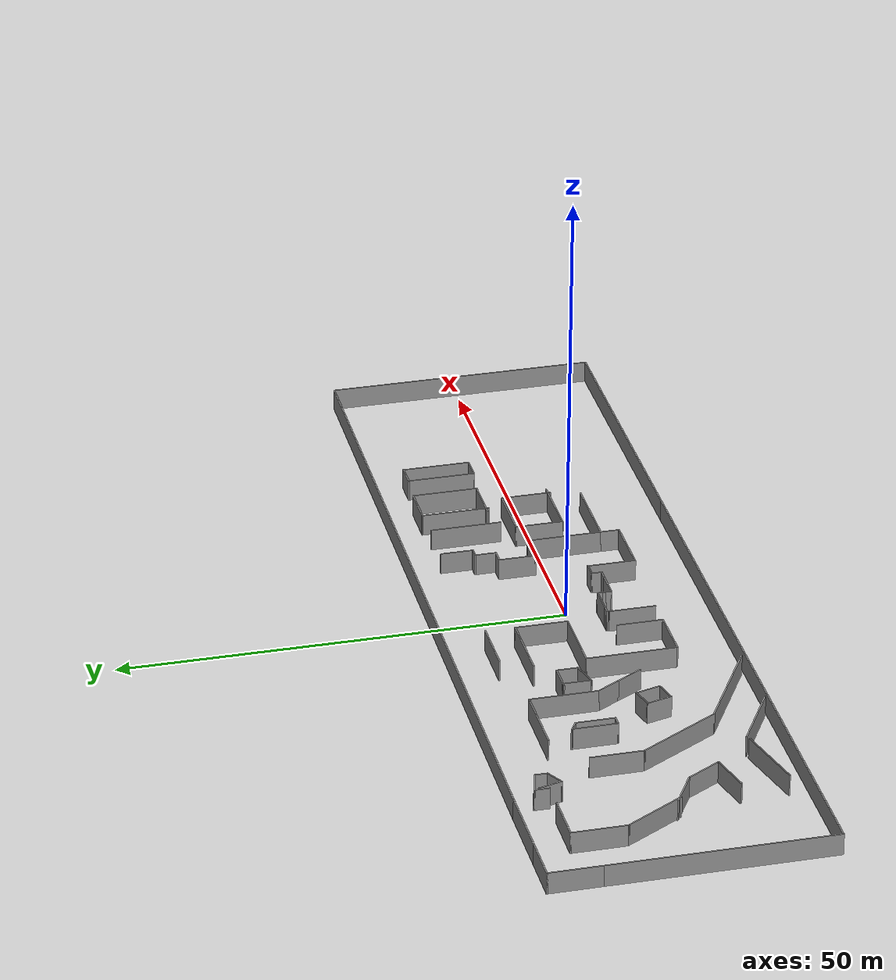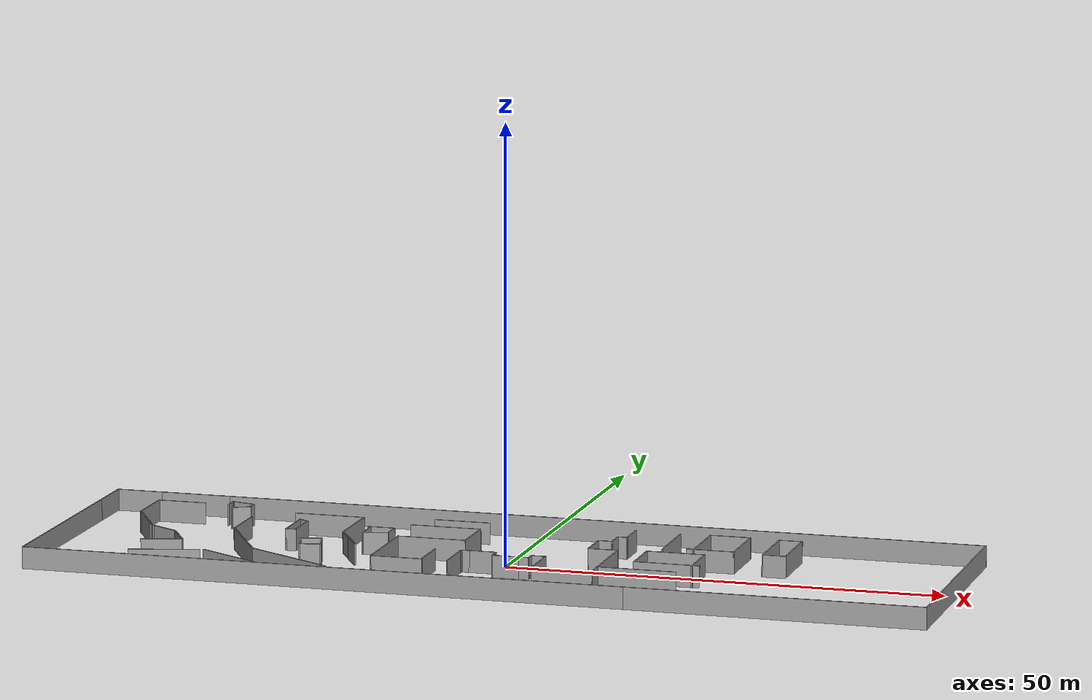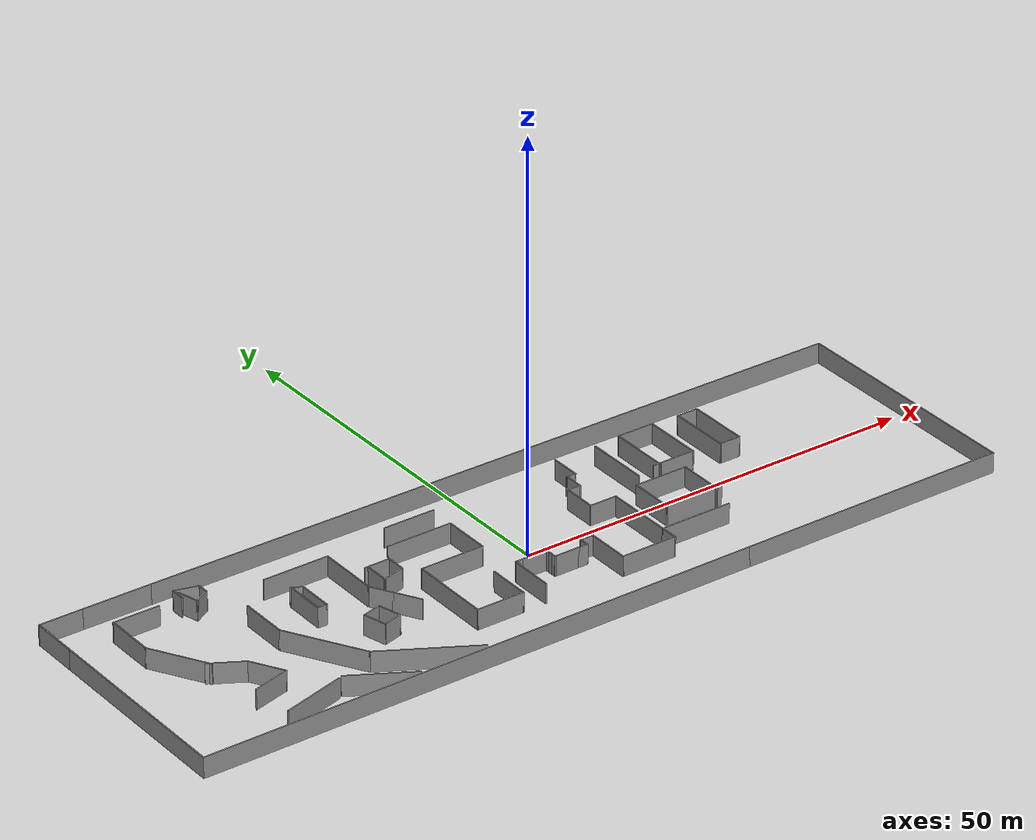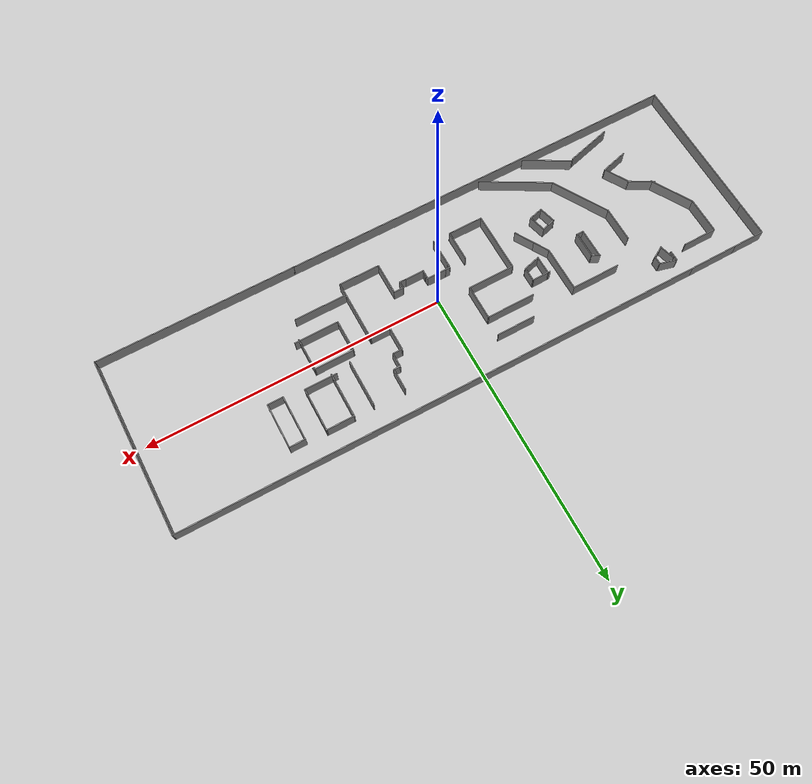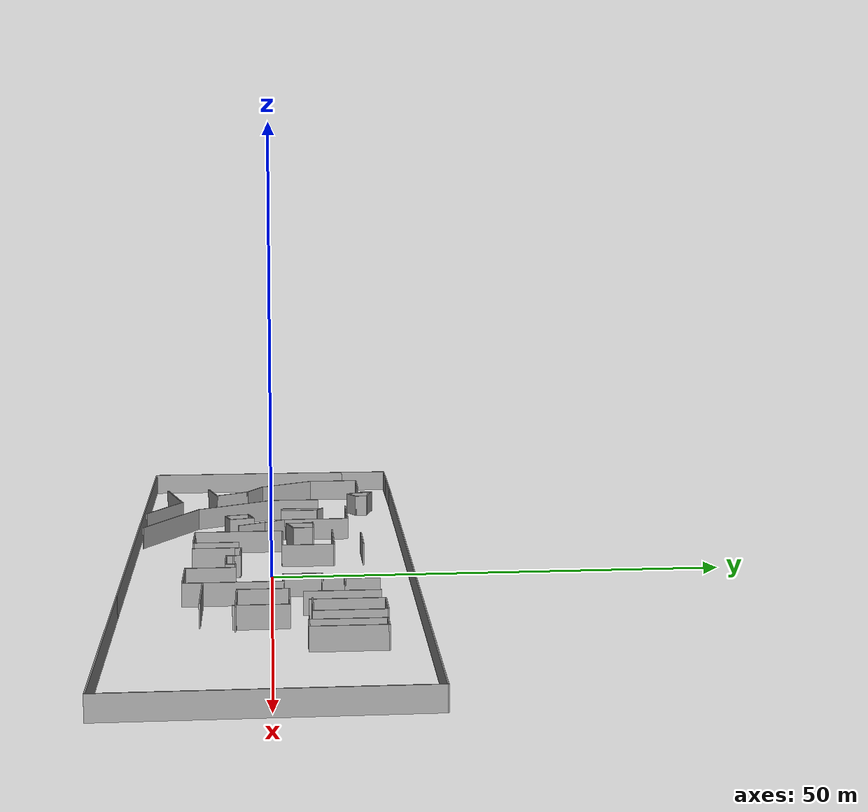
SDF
<?xml version='1.0'?>
<sdf version='1.7'>
  <model name='mimi1'>
    <pose>-0.041195 -0.106303 0 0 -0 0</pose>
    <link name='Wall_10'>
      <collision name='Wall_10_Collision'>
        <geometry>
          <box>
            <size>0.5 0.15 2.5</size>
          </box>
        </geometry>
        <pose>0 0 1.25 0 -0 0</pose>
      </collision>
      <visual name='Wall_10_Visual'>
        <pose>0 0 1.25 0 -0 0</pose>
        <geometry>
          <box>
            <size>0.5 0.15 2.5</size>
          </box>
        </geometry>
        <material>
          <script>
            <uri>file://media/materials/scripts/gazebo.material</uri>
            <name>Gazebo/Grey</name>
          </script>
          <ambient>1 1 1 1</ambient>
        </material>
        <meta>
          <layer>0</layer>
        </meta>
      </visual>
      <pose>-0.048805 -4.1387 0 0 -0 -1.5708</pose>
    </link>
    <link name='Wall_101'>
      <collision name='Wall_101_Collision'>
        <geometry>
          <box>
            <size>6.25 0.15 2.5</size>
          </box>
        </geometry>
        <pose>0 0 1.25 0 -0 0</pose>
      </collision>
      <visual name='Wall_101_Visual'>
        <pose>0 0 1.25 0 -0 0</pose>
        <geometry>
          <box>
            <size>6.25 0.15 2.5</size>
          </box>
        </geometry>
        <material>
          <script>
            <uri>file://media/materials/scripts/gazebo.material</uri>
            <name>Gazebo/Grey</name>
          </script>
          <ambient>1 1 1 1</ambient>
        </material>
        <meta>
          <layer>0</layer>
        </meta>
      </visual>
      <pose>-44.8675 8.29828 0 0 -0 -1.5708</pose>
    </link>
    <link name='Wall_102'>
      <collision name='Wall_102_Collision'>
        <geometry>
          <box>
            <size>7.75 0.15 2.5</size>
          </box>
        </geometry>
        <pose>0 0 1.25 0 -0 0</pose>
      </collision>
      <visual name='Wall_102_Visual'>
        <pose>0 0 1.25 0 -0 0</pose>
        <geometry>
          <box>
            <size>7.75 0.15 2.5</size>
          </box>
        </geometry>
        <material>
          <script>
            <uri>file://media/materials/scripts/gazebo.material</uri>
            <name>Gazebo/Grey</name>
          </script>
          <ambient>1 1 1 1</ambient>
        </material>
        <meta>
          <layer>0</layer>
        </meta>
      </visual>
      <pose>-42.9675 1.95738 0 0 -0 -1.0472</pose>
    </link>
    <link name='Wall_104'>
      <collision name='Wall_104_Collision'>
        <geometry>
          <box>
            <size>5.5 0.15 2.5</size>
          </box>
        </geometry>
        <pose>0 0 1.25 0 -0 0</pose>
      </collision>
      <visual name='Wall_104_Visual'>
        <pose>0 0 1.25 0 -0 0</pose>
        <geometry>
          <box>
            <size>5.5 0.15 2.5</size>
          </box>
        </geometry>
        <material>
          <script>
            <uri>file://media/materials/scripts/gazebo.material</uri>
            <name>Gazebo/Grey</name>
          </script>
          <ambient>1 1 1 1</ambient>
        </material>
        <meta>
          <layer>0</layer>
        </meta>
      </visual>
      <pose>-48.6753 15.4747 0 0 -0 3.14159</pose>
    </link>
    <link name='Wall_105'>
      <collision name='Wall_105_Collision'>
        <geometry>
          <box>
            <size>6 0.15 2.5</size>
          </box>
        </geometry>
        <pose>0 0 1.25 0 -0 0</pose>
      </collision>
      <visual name='Wall_105_Visual'>
        <pose>0 0 1.25 0 -0 0</pose>
        <geometry>
          <box>
            <size>6 0.15 2.5</size>
          </box>
        </geometry>
        <material>
          <script>
            <uri>file://media/materials/scripts/gazebo.material</uri>
            <name>Gazebo/Grey</name>
          </script>
          <ambient>1 1 1 1</ambient>
        </material>
        <meta>
          <layer>0</layer>
        </meta>
      </visual>
      <pose>-51.3503 12.5497 0 0 -0 -1.5708</pose>
    </link>
    <link name='Wall_106'>
      <collision name='Wall_106_Collision'>
        <geometry>
          <box>
            <size>25.25 0.15 2.5</size>
          </box>
        </geometry>
        <pose>0 0 1.25 0 -0 0</pose>
      </collision>
      <visual name='Wall_106_Visual'>
        <pose>0 0 1.25 0 -0 0</pose>
        <geometry>
          <box>
            <size>25.25 0.15 2.5</size>
          </box>
        </geometry>
        <material>
          <script>
            <uri>file://media/materials/scripts/gazebo.material</uri>
            <name>Gazebo/Grey</name>
          </script>
          <ambient>1 1 1 1</ambient>
        </material>
        <meta>
          <layer>0</layer>
        </meta>
      </visual>
      <pose>-51.3503 -2.92525 0 0 -0 -1.5708</pose>
    </link>
    <link name='Wall_107'>
      <collision name='Wall_107_Collision'>
        <geometry>
          <box>
            <size>69.25 0.15 2.5</size>
          </box>
        </geometry>
        <pose>0 0 1.25 0 -0 0</pose>
      </collision>
      <visual name='Wall_107_Visual'>
        <pose>0 0 1.25 0 -0 0</pose>
        <geometry>
          <box>
            <size>69.25 0.15 2.5</size>
          </box>
        </geometry>
        <material>
          <script>
            <uri>file://media/materials/scripts/gazebo.material</uri>
            <name>Gazebo/Grey</name>
          </script>
          <ambient>1 1 1 1</ambient>
        </material>
        <meta>
          <layer>0</layer>
        </meta>
      </visual>
      <pose>-16.8003 -15.4753 0 0 -0 0</pose>
    </link>
    <link name='Wall_108'>
      <collision name='Wall_108_Collision'>
        <geometry>
          <box>
            <size>33.75 0.15 2.5</size>
          </box>
        </geometry>
        <pose>0 0 1.25 0 -0 0</pose>
      </collision>
      <visual name='Wall_108_Visual'>
        <pose>0 0 1.25 0 -0 0</pose>
        <geometry>
          <box>
            <size>33.75 0.15 2.5</size>
          </box>
        </geometry>
        <material>
          <script>
            <uri>file://media/materials/scripts/gazebo.material</uri>
            <name>Gazebo/Grey</name>
          </script>
          <ambient>1 1 1 1</ambient>
        </material>
        <meta>
          <layer>0</layer>
        </meta>
      </visual>
      <pose>34.5497 -15.4753 0 0 -0 0</pose>
    </link>
    <link name='Wall_109'>
      <collision name='Wall_109_Collision'>
        <geometry>
          <box>
            <size>30.5 0.15 2.5</size>
          </box>
        </geometry>
        <pose>0 0 1.25 0 -0 0</pose>
      </collision>
      <visual name='Wall_109_Visual'>
        <pose>0 0 1.25 0 -0 0</pose>
        <geometry>
          <box>
            <size>30.5 0.15 2.5</size>
          </box>
        </geometry>
        <material>
          <script>
            <uri>file://media/materials/scripts/gazebo.material</uri>
            <name>Gazebo/Grey</name>
          </script>
          <ambient>1 1 1 1</ambient>
        </material>
        <meta>
          <layer>0</layer>
        </meta>
      </visual>
      <pose>51.3497 -0.300251 0 0 -0 1.5708</pose>
    </link>
    <link name='Wall_11'>
      <collision name='Wall_11_Collision'>
        <geometry>
          <box>
            <size>0.75 0.15 2.5</size>
          </box>
        </geometry>
        <pose>0 0 1.25 0 -0 0</pose>
      </collision>
      <visual name='Wall_11_Visual'>
        <pose>0 0 1.25 0 -0 0</pose>
        <geometry>
          <box>
            <size>0.75 0.15 2.5</size>
          </box>
        </geometry>
        <material>
          <script>
            <uri>file://media/materials/scripts/gazebo.material</uri>
            <name>Gazebo/Grey</name>
          </script>
          <ambient>1 1 1 1</ambient>
        </material>
        <meta>
          <layer>0</layer>
        </meta>
      </visual>
      <pose>-0.048805 -4.6137 0 0 -0 -1.5708</pose>
    </link>
    <link name='Wall_110'>
      <collision name='Wall_110_Collision'>
        <geometry>
          <box>
            <size>89.152 0.15 2.5</size>
          </box>
        </geometry>
        <pose>0 0 1.25 0 -0 0</pose>
      </collision>
      <visual name='Wall_110_Visual'>
        <pose>0 0 1.25 0 -0 0</pose>
        <geometry>
          <box>
            <size>89.152 0.15 2.5</size>
          </box>
        </geometry>
        <material>
          <script>
            <uri>file://media/materials/scripts/gazebo.material</uri>
            <name>Gazebo/Grey</name>
          </script>
          <ambient>1 1 1 1</ambient>
        </material>
        <meta>
          <layer>0</layer>
        </meta>
      </visual>
      <pose>6.84975 15.1747 0 0 -0 3.13485</pose>
    </link>
    <link name='Wall_12'>
      <collision name='Wall_12_Collision'>
        <geometry>
          <box>
            <size>3.25 0.15 2.5</size>
          </box>
        </geometry>
        <pose>0 0 1.25 0 -0 0</pose>
      </collision>
      <visual name='Wall_12_Visual'>
        <pose>0 0 1.25 0 -0 0</pose>
        <geometry>
          <box>
            <size>3.25 0.15 2.5</size>
          </box>
        </geometry>
        <material>
          <script>
            <uri>file://media/materials/scripts/gazebo.material</uri>
            <name>Gazebo/Grey</name>
          </script>
          <ambient>1 1 1 1</ambient>
        </material>
        <meta>
          <layer>0</layer>
        </meta>
      </visual>
      <pose>1.5012 -4.9137 0 0 -0 0</pose>
    </link>
    <link name='Wall_13'>
      <collision name='Wall_13_Collision'>
        <geometry>
          <box>
            <size>1.25 0.15 2.5</size>
          </box>
        </geometry>
        <pose>0 0 1.25 0 -0 0</pose>
      </collision>
      <visual name='Wall_13_Visual'>
        <pose>0 0 1.25 0 -0 0</pose>
        <geometry>
          <box>
            <size>1.25 0.15 2.5</size>
          </box>
        </geometry>
        <material>
          <script>
            <uri>file://media/materials/scripts/gazebo.material</uri>
            <name>Gazebo/Grey</name>
          </script>
          <ambient>1 1 1 1</ambient>
        </material>
        <meta>
          <layer>0</layer>
        </meta>
      </visual>
      <pose>3.6012 -4.9137 0 0 -0 0</pose>
    </link>
    <link name='Wall_14'>
      <collision name='Wall_14_Collision'>
        <geometry>
          <box>
            <size>1.25 0.15 2.5</size>
          </box>
        </geometry>
        <pose>0 0 1.25 0 -0 0</pose>
      </collision>
      <visual name='Wall_14_Visual'>
        <pose>0 0 1.25 0 -0 0</pose>
        <geometry>
          <box>
            <size>1.25 0.15 2.5</size>
          </box>
        </geometry>
        <material>
          <script>
            <uri>file://media/materials/scripts/gazebo.material</uri>
            <name>Gazebo/Grey</name>
          </script>
          <ambient>1 1 1 1</ambient>
        </material>
        <meta>
          <layer>0</layer>
        </meta>
      </visual>
      <pose>4.1512 -4.3637 0 0 -0 1.5708</pose>
    </link>
    <link name='Wall_15'>
      <collision name='Wall_15_Collision'>
        <geometry>
          <box>
            <size>1.75 0.15 2.5</size>
          </box>
        </geometry>
        <pose>0 0 1.25 0 -0 0</pose>
      </collision>
      <visual name='Wall_15_Visual'>
        <pose>0 0 1.25 0 -0 0</pose>
        <geometry>
          <box>
            <size>1.75 0.15 2.5</size>
          </box>
        </geometry>
        <material>
          <script>
            <uri>file://media/materials/scripts/gazebo.material</uri>
            <name>Gazebo/Grey</name>
          </script>
          <ambient>1 1 1 1</ambient>
        </material>
        <meta>
          <layer>0</layer>
        </meta>
      </visual>
      <pose>4.9512 -3.8137 0 0 -0 0</pose>
    </link>
    <link name='Wall_18'>
      <collision name='Wall_18_Collision'>
        <geometry>
          <box>
            <size>5.5 0.15 2.5</size>
          </box>
        </geometry>
        <pose>0 0 1.25 0 -0 0</pose>
      </collision>
      <visual name='Wall_18_Visual'>
        <pose>0 0 1.25 0 -0 0</pose>
        <geometry>
          <box>
            <size>5.5 0.15 2.5</size>
          </box>
        </geometry>
        <material>
          <script>
            <uri>file://media/materials/scripts/gazebo.material</uri>
            <name>Gazebo/Grey</name>
          </script>
          <ambient>1 1 1 1</ambient>
        </material>
        <meta>
          <layer>0</layer>
        </meta>
      </visual>
      <pose>5.7512 -6.4887 0 0 -0 -1.5708</pose>
    </link>
    <link name='Wall_19'>
      <collision name='Wall_19_Collision'>
        <geometry>
          <box>
            <size>7 0.15 2.5</size>
          </box>
        </geometry>
        <pose>0 0 1.25 0 -0 0</pose>
      </collision>
      <visual name='Wall_19_Visual'>
        <pose>0 0 1.25 0 -0 0</pose>
        <geometry>
          <box>
            <size>7 0.15 2.5</size>
          </box>
        </geometry>
        <material>
          <script>
            <uri>file://media/materials/scripts/gazebo.material</uri>
            <name>Gazebo/Grey</name>
          </script>
          <ambient>1 1 1 1</ambient>
        </material>
        <meta>
          <layer>0</layer>
        </meta>
      </visual>
      <pose>9.17619 -9.1637 0 0 -0 0</pose>
    </link>
    <link name='Wall_20'>
      <collision name='Wall_20_Collision'>
        <geometry>
          <box>
            <size>2.25 0.15 2.5</size>
          </box>
        </geometry>
        <pose>0 0 1.25 0 -0 0</pose>
      </collision>
      <visual name='Wall_20_Visual'>
        <pose>0 0 1.25 0 -0 0</pose>
        <geometry>
          <box>
            <size>2.25 0.15 2.5</size>
          </box>
        </geometry>
        <material>
          <script>
            <uri>file://media/materials/scripts/gazebo.material</uri>
            <name>Gazebo/Grey</name>
          </script>
          <ambient>1 1 1 1</ambient>
        </material>
        <meta>
          <layer>0</layer>
        </meta>
      </visual>
      <pose>12.6012 -8.1137 0 0 -0 1.5708</pose>
    </link>
    <link name='Wall_21'>
      <collision name='Wall_21_Collision'>
        <geometry>
          <box>
            <size>9 0.15 2.5</size>
          </box>
        </geometry>
        <pose>0 0 1.25 0 -0 0</pose>
      </collision>
      <visual name='Wall_21_Visual'>
        <pose>0 0 1.25 0 -0 0</pose>
        <geometry>
          <box>
            <size>9 0.15 2.5</size>
          </box>
        </geometry>
        <material>
          <script>
            <uri>file://media/materials/scripts/gazebo.material</uri>
            <name>Gazebo/Grey</name>
          </script>
          <ambient>1 1 1 1</ambient>
        </material>
        <meta>
          <layer>0</layer>
        </meta>
      </visual>
      <pose>17.0262 -7.0637 0 0 -0 0</pose>
    </link>
    <link name='Wall_23'>
      <collision name='Wall_23_Collision'>
        <geometry>
          <box>
            <size>8.5 0.15 2.5</size>
          </box>
        </geometry>
        <pose>0 0 1.25 0 -0 0</pose>
      </collision>
      <visual name='Wall_23_Visual'>
        <pose>0 0 1.25 0 -0 0</pose>
        <geometry>
          <box>
            <size>8.5 0.15 2.5</size>
          </box>
        </geometry>
        <material>
          <script>
            <uri>file://media/materials/scripts/gazebo.material</uri>
            <name>Gazebo/Grey</name>
          </script>
          <ambient>1 1 1 1</ambient>
        </material>
        <meta>
          <layer>0</layer>
        </meta>
      </visual>
      <pose>12.6012 -2.8887 0 0 -0 1.5708</pose>
    </link>
    <link name='Wall_24'>
      <collision name='Wall_24_Collision'>
        <geometry>
          <box>
            <size>3.5 0.15 2.5</size>
          </box>
        </geometry>
        <pose>0 0 1.25 0 -0 0</pose>
      </collision>
      <visual name='Wall_24_Visual'>
        <pose>0 0 1.25 0 -0 0</pose>
        <geometry>
          <box>
            <size>3.5 0.15 2.5</size>
          </box>
        </geometry>
        <material>
          <script>
            <uri>file://media/materials/scripts/gazebo.material</uri>
            <name>Gazebo/Grey</name>
          </script>
          <ambient>1 1 1 1</ambient>
        </material>
        <meta>
          <layer>0</layer>
        </meta>
      </visual>
      <pose>10.9262 1.2863 0 0 -0 3.14159</pose>
    </link>
    <link name='Wall_25'>
      <collision name='Wall_25_Collision'>
        <geometry>
          <box>
            <size>4.25 0.15 2.5</size>
          </box>
        </geometry>
        <pose>0 0 1.25 0 -0 0</pose>
      </collision>
      <visual name='Wall_25_Visual'>
        <pose>0 0 1.25 0 -0 0</pose>
        <geometry>
          <box>
            <size>4.25 0.15 2.5</size>
          </box>
        </geometry>
        <material>
          <script>
            <uri>file://media/materials/scripts/gazebo.material</uri>
            <name>Gazebo/Grey</name>
          </script>
          <ambient>1 1 1 1</ambient>
        </material>
        <meta>
          <layer>0</layer>
        </meta>
      </visual>
      <pose>9.25119 3.3363 0 0 -0 1.5708</pose>
    </link>
    <link name='Wall_26'>
      <collision name='Wall_26_Collision'>
        <geometry>
          <box>
            <size>1.75 0.15 2.5</size>
          </box>
        </geometry>
        <pose>0 0 1.25 0 -0 0</pose>
      </collision>
      <visual name='Wall_26_Visual'>
        <pose>0 0 1.25 0 -0 0</pose>
        <geometry>
          <box>
            <size>1.75 0.15 2.5</size>
          </box>
        </geometry>
        <material>
          <script>
            <uri>file://media/materials/scripts/gazebo.material</uri>
            <name>Gazebo/Grey</name>
          </script>
          <ambient>1 1 1 1</ambient>
        </material>
        <meta>
          <layer>0</layer>
        </meta>
      </visual>
      <pose>10.0512 5.3863 0 0 -0 0</pose>
    </link>
    <link name='Wall_27'>
      <collision name='Wall_27_Collision'>
        <geometry>
          <box>
            <size>2.5 0.15 2.5</size>
          </box>
        </geometry>
        <pose>0 0 1.25 0 -0 0</pose>
      </collision>
      <visual name='Wall_27_Visual'>
        <pose>0 0 1.25 0 -0 0</pose>
        <geometry>
          <box>
            <size>2.5 0.15 2.5</size>
          </box>
        </geometry>
        <material>
          <script>
            <uri>file://media/materials/scripts/gazebo.material</uri>
            <name>Gazebo/Grey</name>
          </script>
          <ambient>1 1 1 1</ambient>
        </material>
        <meta>
          <layer>0</layer>
        </meta>
      </visual>
      <pose>10.8512 6.5613 0 0 -0 1.5708</pose>
    </link>
    <link name='Wall_28'>
      <collision name='Wall_28_Collision'>
        <geometry>
          <box>
            <size>1.25 0.15 2.5</size>
          </box>
        </geometry>
        <pose>0 0 1.25 0 -0 0</pose>
      </collision>
      <visual name='Wall_28_Visual'>
        <pose>0 0 1.25 0 -0 0</pose>
        <geometry>
          <box>
            <size>1.25 0.15 2.5</size>
          </box>
        </geometry>
        <material>
          <script>
            <uri>file://media/materials/scripts/gazebo.material</uri>
            <name>Gazebo/Grey</name>
          </script>
          <ambient>1 1 1 1</ambient>
        </material>
        <meta>
          <layer>0</layer>
        </meta>
      </visual>
      <pose>11.4012 7.7363 0 0 -0 0</pose>
    </link>
    <link name='Wall_29'>
      <collision name='Wall_29_Collision'>
        <geometry>
          <box>
            <size>3.75 0.15 2.5</size>
          </box>
        </geometry>
        <pose>0 0 1.25 0 -0 0</pose>
      </collision>
      <visual name='Wall_29_Visual'>
        <pose>0 0 1.25 0 -0 0</pose>
        <geometry>
          <box>
            <size>3.75 0.15 2.5</size>
          </box>
        </geometry>
        <material>
          <script>
            <uri>file://media/materials/scripts/gazebo.material</uri>
            <name>Gazebo/Grey</name>
          </script>
          <ambient>1 1 1 1</ambient>
        </material>
        <meta>
          <layer>0</layer>
        </meta>
      </visual>
      <pose>11.9512 9.5363 0 0 -0 1.5708</pose>
    </link>
    <link name='Wall_31'>
      <collision name='Wall_31_Collision'>
        <geometry>
          <box>
            <size>5.25 0.15 2.5</size>
          </box>
        </geometry>
        <pose>0 0 1.25 0 -0 0</pose>
      </collision>
      <visual name='Wall_31_Visual'>
        <pose>0 0 1.25 0 -0 0</pose>
        <geometry>
          <box>
            <size>5.25 0.15 2.5</size>
          </box>
        </geometry>
        <material>
          <script>
            <uri>file://media/materials/scripts/gazebo.material</uri>
            <name>Gazebo/Grey</name>
          </script>
          <ambient>1 1 1 1</ambient>
        </material>
        <meta>
          <layer>0</layer>
        </meta>
      </visual>
      <pose>-4.08828 -6.21074 0 0 -0 -1.5708</pose>
    </link>
    <link name='Wall_33'>
      <collision name='Wall_33_Collision'>
        <geometry>
          <box>
            <size>5.25 0.15 2.5</size>
          </box>
        </geometry>
        <pose>0 0 1.25 0 -0 0</pose>
      </collision>
      <visual name='Wall_33_Visual'>
        <pose>0 0 1.25 0 -0 0</pose>
        <geometry>
          <box>
            <size>5.25 0.15 2.5</size>
          </box>
        </geometry>
        <material>
          <script>
            <uri>file://media/materials/scripts/gazebo.material</uri>
            <name>Gazebo/Grey</name>
          </script>
          <ambient>1 1 1 1</ambient>
        </material>
        <meta>
          <layer>0</layer>
        </meta>
      </visual>
      <pose>-7.04153 -6.25119 0 0 -0 -1.5708</pose>
    </link>
    <link name='Wall_34'>
      <collision name='Wall_34_Collision'>
        <geometry>
          <box>
            <size>6 0.15 2.5</size>
          </box>
        </geometry>
        <pose>0 0 1.25 0 -0 0</pose>
      </collision>
      <visual name='Wall_34_Visual'>
        <pose>0 0 1.25 0 -0 0</pose>
        <geometry>
          <box>
            <size>6 0.15 2.5</size>
          </box>
        </geometry>
        <material>
          <script>
            <uri>file://media/materials/scripts/gazebo.material</uri>
            <name>Gazebo/Grey</name>
          </script>
          <ambient>1 1 1 1</ambient>
        </material>
        <meta>
          <layer>0</layer>
        </meta>
      </visual>
      <pose>-9.96653 -8.80119 0 0 -0 3.14159</pose>
    </link>
    <link name='Wall_35'>
      <collision name='Wall_35_Collision'>
        <geometry>
          <box>
            <size>10.25 0.15 2.5</size>
          </box>
        </geometry>
        <pose>0 0 1.25 0 -0 0</pose>
      </collision>
      <visual name='Wall_35_Visual'>
        <pose>0 0 1.25 0 -0 0</pose>
        <geometry>
          <box>
            <size>10.25 0.15 2.5</size>
          </box>
        </geometry>
        <material>
          <script>
            <uri>file://media/materials/scripts/gazebo.material</uri>
            <name>Gazebo/Grey</name>
          </script>
          <ambient>1 1 1 1</ambient>
        </material>
        <meta>
          <layer>0</layer>
        </meta>
      </visual>
      <pose>-12.8915 -3.75119 0 0 -0 1.5708</pose>
    </link>
    <link name='Wall_36'>
      <collision name='Wall_36_Collision'>
        <geometry>
          <box>
            <size>8 0.15 2.5</size>
          </box>
        </geometry>
        <pose>0 0 1.25 0 -0 0</pose>
      </collision>
      <visual name='Wall_36_Visual'>
        <pose>0 0 1.25 0 -0 0</pose>
        <geometry>
          <box>
            <size>8 0.15 2.5</size>
          </box>
        </geometry>
        <material>
          <script>
            <uri>file://media/materials/scripts/gazebo.material</uri>
            <name>Gazebo/Grey</name>
          </script>
          <ambient>1 1 1 1</ambient>
        </material>
        <meta>
          <layer>0</layer>
        </meta>
      </visual>
      <pose>-8.96653 1.2988 0 0 -0 0</pose>
    </link>
    <link name='Wall_37'>
      <collision name='Wall_37_Collision'>
        <geometry>
          <box>
            <size>6 0.15 2.5</size>
          </box>
        </geometry>
        <pose>0 0 1.25 0 -0 0</pose>
      </collision>
      <visual name='Wall_37_Visual'>
        <pose>0 0 1.25 0 -0 0</pose>
        <geometry>
          <box>
            <size>6 0.15 2.5</size>
          </box>
        </geometry>
        <material>
          <script>
            <uri>file://media/materials/scripts/gazebo.material</uri>
            <name>Gazebo/Grey</name>
          </script>
          <ambient>1 1 1 1</ambient>
        </material>
        <meta>
          <layer>0</layer>
        </meta>
      </visual>
      <pose>-5.04153 4.2238 0 0 -0 1.5708</pose>
    </link>
    <link name='Wall_38'>
      <collision name='Wall_38_Collision'>
        <geometry>
          <box>
            <size>8.25 0.15 2.5</size>
          </box>
        </geometry>
        <pose>0 0 1.25 0 -0 0</pose>
      </collision>
      <visual name='Wall_38_Visual'>
        <pose>0 0 1.25 0 -0 0</pose>
        <geometry>
          <box>
            <size>8.25 0.15 2.5</size>
          </box>
        </geometry>
        <material>
          <script>
            <uri>file://media/materials/scripts/gazebo.material</uri>
            <name>Gazebo/Grey</name>
          </script>
          <ambient>1 1 1 1</ambient>
        </material>
        <meta>
          <layer>0</layer>
        </meta>
      </visual>
      <pose>-9.09153 7.14881 0 0 -0 3.14159</pose>
    </link>
    <link name='Wall_40'>
      <collision name='Wall_40_Collision'>
        <geometry>
          <box>
            <size>7.5 0.15 2.5</size>
          </box>
        </geometry>
        <pose>0 0 1.25 0 -0 0</pose>
      </collision>
      <visual name='Wall_40_Visual'>
        <pose>0 0 1.25 0 -0 0</pose>
        <geometry>
          <box>
            <size>7.5 0.15 2.5</size>
          </box>
        </geometry>
        <material>
          <script>
            <uri>file://media/materials/scripts/gazebo.material</uri>
            <name>Gazebo/Grey</name>
          </script>
          <ambient>1 1 1 1</ambient>
        </material>
        <meta>
          <layer>0</layer>
        </meta>
      </visual>
      <pose>19.5038 -3.49892 0 0 -0 3.14159</pose>
    </link>
    <link name='Wall_41'>
      <collision name='Wall_41_Collision'>
        <geometry>
          <box>
            <size>5.5 0.15 2.5</size>
          </box>
        </geometry>
        <pose>0 0 1.25 0 -0 0</pose>
      </collision>
      <visual name='Wall_41_Visual'>
        <pose>0 0 1.25 0 -0 0</pose>
        <geometry>
          <box>
            <size>5.5 0.15 2.5</size>
          </box>
        </geometry>
        <material>
          <script>
            <uri>file://media/materials/scripts/gazebo.material</uri>
            <name>Gazebo/Grey</name>
          </script>
          <ambient>1 1 1 1</ambient>
        </material>
        <meta>
          <layer>0</layer>
        </meta>
      </visual>
      <pose>15.8288 -0.823917 0 0 -0 1.5708</pose>
    </link>
    <link name='Wall_42'>
      <collision name='Wall_42_Collision'>
        <geometry>
          <box>
            <size>6.75 0.15 2.5</size>
          </box>
        </geometry>
        <pose>0 0 1.25 0 -0 0</pose>
      </collision>
      <visual name='Wall_42_Visual'>
        <pose>0 0 1.25 0 -0 0</pose>
        <geometry>
          <box>
            <size>6.75 0.15 2.5</size>
          </box>
        </geometry>
        <material>
          <script>
            <uri>file://media/materials/scripts/gazebo.material</uri>
            <name>Gazebo/Grey</name>
          </script>
          <ambient>1 1 1 1</ambient>
        </material>
        <meta>
          <layer>0</layer>
        </meta>
      </visual>
      <pose>19.1288 1.85108 0 0 -0 0</pose>
    </link>
    <link name='Wall_43'>
      <collision name='Wall_43_Collision'>
        <geometry>
          <box>
            <size>5.75 0.15 2.5</size>
          </box>
        </geometry>
        <pose>0 0 1.25 0 -0 0</pose>
      </collision>
      <visual name='Wall_43_Visual'>
        <pose>0 0 1.25 0 -0 0</pose>
        <geometry>
          <box>
            <size>5.75 0.15 2.5</size>
          </box>
        </geometry>
        <material>
          <script>
            <uri>file://media/materials/scripts/gazebo.material</uri>
            <name>Gazebo/Grey</name>
          </script>
          <ambient>1 1 1 1</ambient>
        </material>
        <meta>
          <layer>0</layer>
        </meta>
      </visual>
      <pose>22.4288 -0.948917 0 0 -0 -1.5708</pose>
    </link>
    <link name='Wall_45'>
      <collision name='Wall_45_Collision'>
        <geometry>
          <box>
            <size>8 0.15 2.5</size>
          </box>
        </geometry>
        <pose>0 0 1.25 0 -0 0</pose>
      </collision>
      <visual name='Wall_45_Visual'>
        <pose>0 0 1.25 0 -0 0</pose>
        <geometry>
          <box>
            <size>8 0.15 2.5</size>
          </box>
        </geometry>
        <material>
          <script>
            <uri>file://media/materials/scripts/gazebo.material</uri>
            <name>Gazebo/Grey</name>
          </script>
          <ambient>1 1 1 1</ambient>
        </material>
        <meta>
          <layer>0</layer>
        </meta>
      </visual>
      <pose>17.2318 7.26146 0 0 -0 -1.5708</pose>
    </link>
    <link name='Wall_47'>
      <collision name='Wall_47_Collision'>
        <geometry>
          <box>
            <size>5.5 0.15 2.5</size>
          </box>
        </geometry>
        <pose>0 0 1.25 0 -0 0</pose>
      </collision>
      <visual name='Wall_47_Visual'>
        <pose>0 0 1.25 0 -0 0</pose>
        <geometry>
          <box>
            <size>5.5 0.15 2.5</size>
          </box>
        </geometry>
        <material>
          <script>
            <uri>file://media/materials/scripts/gazebo.material</uri>
            <name>Gazebo/Grey</name>
          </script>
          <ambient>1 1 1 1</ambient>
        </material>
        <meta>
          <layer>0</layer>
        </meta>
      </visual>
      <pose>22.5364 4.10673 0 0 -0 0</pose>
    </link>
    <link name='Wall_48'>
      <collision name='Wall_48_Collision'>
        <geometry>
          <box>
            <size>7.5 0.15 2.5</size>
          </box>
        </geometry>
        <pose>0 0 1.25 0 -0 0</pose>
      </collision>
      <visual name='Wall_48_Visual'>
        <pose>0 0 1.25 0 -0 0</pose>
        <geometry>
          <box>
            <size>7.5 0.15 2.5</size>
          </box>
        </geometry>
        <material>
          <script>
            <uri>file://media/materials/scripts/gazebo.material</uri>
            <name>Gazebo/Grey</name>
          </script>
          <ambient>1 1 1 1</ambient>
        </material>
        <meta>
          <layer>0</layer>
        </meta>
      </visual>
      <pose>25.2114 7.78173 0 0 -0 1.5708</pose>
    </link>
    <link name='Wall_49'>
      <collision name='Wall_49_Collision'>
        <geometry>
          <box>
            <size>4.75 0.15 2.5</size>
          </box>
        </geometry>
        <pose>0 0 1.25 0 -0 0</pose>
      </collision>
      <visual name='Wall_49_Visual'>
        <pose>0 0 1.25 0 -0 0</pose>
        <geometry>
          <box>
            <size>4.75 0.15 2.5</size>
          </box>
        </geometry>
        <material>
          <script>
            <uri>file://media/materials/scripts/gazebo.material</uri>
            <name>Gazebo/Grey</name>
          </script>
          <ambient>1 1 1 1</ambient>
        </material>
        <meta>
          <layer>0</layer>
        </meta>
      </visual>
      <pose>22.9114 11.4567 0 0 -0 3.14159</pose>
    </link>
    <link name='Wall_50'>
      <collision name='Wall_50_Collision'>
        <geometry>
          <box>
            <size>7.75 0.15 2.5</size>
          </box>
        </geometry>
        <pose>0 0 1.25 0 -0 0</pose>
      </collision>
      <visual name='Wall_50_Visual'>
        <pose>0 0 1.25 0 -0 0</pose>
        <geometry>
          <box>
            <size>7.75 0.15 2.5</size>
          </box>
        </geometry>
        <material>
          <script>
            <uri>file://media/materials/scripts/gazebo.material</uri>
            <name>Gazebo/Grey</name>
          </script>
          <ambient>1 1 1 1</ambient>
        </material>
        <meta>
          <layer>0</layer>
        </meta>
      </visual>
      <pose>20.6114 7.65673 0 0 -0 -1.5708</pose>
    </link>
    <link name='Wall_52'>
      <collision name='Wall_52_Collision'>
        <geometry>
          <box>
            <size>7.75 0.15 2.5</size>
          </box>
        </geometry>
        <pose>0 0 1.25 0 -0 0</pose>
      </collision>
      <visual name='Wall_52_Visual'>
        <pose>0 0 1.25 0 -0 0</pose>
        <geometry>
          <box>
            <size>7.75 0.15 2.5</size>
          </box>
        </geometry>
        <material>
          <script>
            <uri>file://media/materials/scripts/gazebo.material</uri>
            <name>Gazebo/Grey</name>
          </script>
          <ambient>1 1 1 1</ambient>
        </material>
        <meta>
          <layer>0</layer>
        </meta>
      </visual>
      <pose>28.5998 7.38646 0 0 -0 -1.5708</pose>
    </link>
    <link name='Wall_53'>
      <collision name='Wall_53_Collision'>
        <geometry>
          <box>
            <size>2.75 0.15 2.5</size>
          </box>
        </geometry>
        <pose>0 0 1.25 0 -0 0</pose>
      </collision>
      <visual name='Wall_53_Visual'>
        <pose>0 0 1.25 0 -0 0</pose>
        <geometry>
          <box>
            <size>2.75 0.15 2.5</size>
          </box>
        </geometry>
        <material>
          <script>
            <uri>file://media/materials/scripts/gazebo.material</uri>
            <name>Gazebo/Grey</name>
          </script>
          <ambient>1 1 1 1</ambient>
        </material>
        <meta>
          <layer>0</layer>
        </meta>
      </visual>
      <pose>29.8998 3.58646 0 0 -0 0</pose>
    </link>
    <link name='Wall_54'>
      <collision name='Wall_54_Collision'>
        <geometry>
          <box>
            <size>7.75 0.15 2.5</size>
          </box>
        </geometry>
        <pose>0 0 1.25 0 -0 0</pose>
      </collision>
      <visual name='Wall_54_Visual'>
        <pose>0 0 1.25 0 -0 0</pose>
        <geometry>
          <box>
            <size>7.75 0.15 2.5</size>
          </box>
        </geometry>
        <material>
          <script>
            <uri>file://media/materials/scripts/gazebo.material</uri>
            <name>Gazebo/Grey</name>
          </script>
          <ambient>1 1 1 1</ambient>
        </material>
        <meta>
          <layer>0</layer>
        </meta>
      </visual>
      <pose>31.1998 7.38646 0 0 -0 1.5708</pose>
    </link>
    <link name='Wall_55'>
      <collision name='Wall_55_Collision'>
        <geometry>
          <box>
            <size>2.75 0.15 2.5</size>
          </box>
        </geometry>
        <pose>0 0 1.25 0 -0 0</pose>
      </collision>
      <visual name='Wall_55_Visual'>
        <pose>0 0 1.25 0 -0 0</pose>
        <geometry>
          <box>
            <size>2.75 0.15 2.5</size>
          </box>
        </geometry>
        <material>
          <script>
            <uri>file://media/materials/scripts/gazebo.material</uri>
            <name>Gazebo/Grey</name>
          </script>
          <ambient>1 1 1 1</ambient>
        </material>
        <meta>
          <layer>0</layer>
        </meta>
      </visual>
      <pose>29.8998 11.1865 0 0 -0 3.14159</pose>
    </link>
    <link name='Wall_57'>
      <collision name='Wall_57_Collision'>
        <geometry>
          <box>
            <size>12.25 0.15 2.5</size>
          </box>
        </geometry>
        <pose>0 0 1.25 0 -0 0</pose>
      </collision>
      <visual name='Wall_57_Visual'>
        <pose>0 0 1.25 0 -0 0</pose>
        <geometry>
          <box>
            <size>12.25 0.15 2.5</size>
          </box>
        </geometry>
        <material>
          <script>
            <uri>file://media/materials/scripts/gazebo.material</uri>
            <name>Gazebo/Grey</name>
          </script>
          <ambient>1 1 1 1</ambient>
        </material>
        <meta>
          <layer>0</layer>
        </meta>
      </visual>
      <pose>-21.3835 -11.9633 0 0 -0 2.61799</pose>
    </link>
    <link name='Wall_58'>
      <collision name='Wall_58_Collision'>
        <geometry>
          <box>
            <size>10.5 0.15 2.5</size>
          </box>
        </geometry>
        <pose>0 0 1.25 0 -0 0</pose>
      </collision>
      <visual name='Wall_58_Visual'>
        <pose>0 0 1.25 0 -0 0</pose>
        <geometry>
          <box>
            <size>10.5 0.15 2.5</size>
          </box>
        </geometry>
        <material>
          <script>
            <uri>file://media/materials/scripts/gazebo.material</uri>
            <name>Gazebo/Grey</name>
          </script>
          <ambient>1 1 1 1</ambient>
        </material>
        <meta>
          <layer>0</layer>
        </meta>
      </visual>
      <pose>-29.2104 -4.45662 0 0 -0 2.0944</pose>
    </link>
    <link name='Wall_59'>
      <collision name='Wall_59_Collision'>
        <geometry>
          <box>
            <size>6 0.15 2.5</size>
          </box>
        </geometry>
        <pose>0 0 1.25 0 -0 0</pose>
      </collision>
      <visual name='Wall_59_Visual'>
        <pose>0 0 1.25 0 -0 0</pose>
        <geometry>
          <box>
            <size>6 0.15 2.5</size>
          </box>
        </geometry>
        <material>
          <script>
            <uri>file://media/materials/scripts/gazebo.material</uri>
            <name>Gazebo/Grey</name>
          </script>
          <ambient>1 1 1 1</ambient>
        </material>
        <meta>
          <layer>0</layer>
        </meta>
      </visual>
      <pose>-31.7979 2.95006 0 0 -0 1.5708</pose>
    </link>
    <link name='Wall_6'>
      <collision name='Wall_6_Collision'>
        <geometry>
          <box>
            <size>0.75 0.15 2.5</size>
          </box>
        </geometry>
        <pose>0 0 1.25 0 -0 0</pose>
      </collision>
      <visual name='Wall_6_Visual'>
        <pose>0 0 1.25 0 -0 0</pose>
        <geometry>
          <box>
            <size>0.75 0.15 2.5</size>
          </box>
        </geometry>
        <material>
          <script>
            <uri>file://media/materials/scripts/gazebo.material</uri>
            <name>Gazebo/Grey</name>
          </script>
          <ambient>1 1 1 1</ambient>
        </material>
        <meta>
          <layer>0</layer>
        </meta>
      </visual>
      <pose>-3.9988 -3.6637 0 0 -0 1.5708</pose>
    </link>
    <link name='Wall_61'>
      <collision name='Wall_61_Collision'>
        <geometry>
          <box>
            <size>5 0.15 2.5</size>
          </box>
        </geometry>
        <pose>0 0 1.25 0 -0 0</pose>
      </collision>
      <visual name='Wall_61_Visual'>
        <pose>0 0 1.25 0 -0 0</pose>
        <geometry>
          <box>
            <size>5 0.15 2.5</size>
          </box>
        </geometry>
        <material>
          <script>
            <uri>file://media/materials/scripts/gazebo.material</uri>
            <name>Gazebo/Grey</name>
          </script>
          <ambient>1 1 1 1</ambient>
        </material>
        <meta>
          <layer>0</layer>
        </meta>
      </visual>
      <pose>-26.0961 3.74497 0 0 -0 -1.5708</pose>
    </link>
    <link name='Wall_62'>
      <collision name='Wall_62_Collision'>
        <geometry>
          <box>
            <size>1.25 0.15 2.5</size>
          </box>
        </geometry>
        <pose>0 0 1.25 0 -0 0</pose>
      </collision>
      <visual name='Wall_62_Visual'>
        <pose>0 0 1.25 0 -0 0</pose>
        <geometry>
          <box>
            <size>1.25 0.15 2.5</size>
          </box>
        </geometry>
        <material>
          <script>
            <uri>file://media/materials/scripts/gazebo.material</uri>
            <name>Gazebo/Grey</name>
          </script>
          <ambient>1 1 1 1</ambient>
        </material>
        <meta>
          <layer>0</layer>
        </meta>
      </visual>
      <pose>-25.5461 1.31997 0 0 -0 0</pose>
    </link>
    <link name='Wall_63'>
      <collision name='Wall_63_Collision'>
        <geometry>
          <box>
            <size>4.5 0.15 2.5</size>
          </box>
        </geometry>
        <pose>0 0 1.25 0 -0 0</pose>
      </collision>
      <visual name='Wall_63_Visual'>
        <pose>0 0 1.25 0 -0 0</pose>
        <geometry>
          <box>
            <size>4.5 0.15 2.5</size>
          </box>
        </geometry>
        <material>
          <script>
            <uri>file://media/materials/scripts/gazebo.material</uri>
            <name>Gazebo/Grey</name>
          </script>
          <ambient>1 1 1 1</ambient>
        </material>
        <meta>
          <layer>0</layer>
        </meta>
      </visual>
      <pose>-24.9961 3.49497 0 0 -0 1.5708</pose>
    </link>
    <link name='Wall_64'>
      <collision name='Wall_64_Collision'>
        <geometry>
          <box>
            <size>1.5 0.15 2.5</size>
          </box>
        </geometry>
        <pose>0 0 1.25 0 -0 0</pose>
      </collision>
      <visual name='Wall_64_Visual'>
        <pose>0 0 1.25 0 -0 0</pose>
        <geometry>
          <box>
            <size>1.5 0.15 2.5</size>
          </box>
        </geometry>
        <material>
          <script>
            <uri>file://media/materials/scripts/gazebo.material</uri>
            <name>Gazebo/Grey</name>
          </script>
          <ambient>1 1 1 1</ambient>
        </material>
        <meta>
          <layer>0</layer>
        </meta>
      </visual>
      <pose>-25.5807 6.00747 0 0 -0 2.61799</pose>
    </link>
    <link name='Wall_66'>
      <collision name='Wall_66_Collision'>
        <geometry>
          <box>
            <size>8.25 0.15 2.5</size>
          </box>
        </geometry>
        <pose>0 0 1.25 0 -0 0</pose>
      </collision>
      <visual name='Wall_66_Visual'>
        <pose>0 0 1.25 0 -0 0</pose>
        <geometry>
          <box>
            <size>8.25 0.15 2.5</size>
          </box>
        </geometry>
        <material>
          <script>
            <uri>file://media/materials/scripts/gazebo.material</uri>
            <name>Gazebo/Grey</name>
          </script>
          <ambient>1 1 1 1</ambient>
        </material>
        <meta>
          <layer>0</layer>
        </meta>
      </visual>
      <pose>-23.5025 9.24459 0 0 -0 0</pose>
    </link>
    <link name='Wall_67'>
      <collision name='Wall_67_Collision'>
        <geometry>
          <box>
            <size>7.75 0.15 2.5</size>
          </box>
        </geometry>
        <pose>0 0 1.25 0 -0 0</pose>
      </collision>
      <visual name='Wall_67_Visual'>
        <pose>0 0 1.25 0 -0 0</pose>
        <geometry>
          <box>
            <size>7.75 0.15 2.5</size>
          </box>
        </geometry>
        <material>
          <script>
            <uri>file://media/materials/scripts/gazebo.material</uri>
            <name>Gazebo/Grey</name>
          </script>
          <ambient>1 1 1 1</ambient>
        </material>
        <meta>
          <layer>0</layer>
        </meta>
      </visual>
      <pose>-19.4525 5.44459 0 0 -0 -1.5708</pose>
    </link>
    <link name='Wall_68'>
      <collision name='Wall_68_Collision'>
        <geometry>
          <box>
            <size>3 0.15 2.5</size>
          </box>
        </geometry>
        <pose>0 0 1.25 0 -0 0</pose>
      </collision>
      <visual name='Wall_68_Visual'>
        <pose>0 0 1.25 0 -0 0</pose>
        <geometry>
          <box>
            <size>3 0.15 2.5</size>
          </box>
        </geometry>
        <material>
          <script>
            <uri>file://media/materials/scripts/gazebo.material</uri>
            <name>Gazebo/Grey</name>
          </script>
          <ambient>1 1 1 1</ambient>
        </material>
        <meta>
          <layer>0</layer>
        </meta>
      </visual>
      <pose>-18.74 0.410504 0 0 -0 -1.0472</pose>
    </link>
    <link name='Wall_69'>
      <collision name='Wall_69_Collision'>
        <geometry>
          <box>
            <size>3.5 0.15 2.5</size>
          </box>
        </geometry>
        <pose>0 0 1.25 0 -0 0</pose>
      </collision>
      <visual name='Wall_69_Visual'>
        <pose>0 0 1.25 0 -0 0</pose>
        <geometry>
          <box>
            <size>3.5 0.15 2.5</size>
          </box>
        </geometry>
        <material>
          <script>
            <uri>file://media/materials/scripts/gazebo.material</uri>
            <name>Gazebo/Grey</name>
          </script>
          <ambient>1 1 1 1</ambient>
        </material>
        <meta>
          <layer>0</layer>
        </meta>
      </visual>
      <pose>-17.19 -2.27418 0 0 -0 -1.0472</pose>
    </link>
    <link name='Wall_7'>
      <collision name='Wall_7_Collision'>
        <geometry>
          <box>
            <size>1 0.15 2.5</size>
          </box>
        </geometry>
        <pose>0 0 1.25 0 -0 0</pose>
      </collision>
      <visual name='Wall_7_Visual'>
        <pose>0 0 1.25 0 -0 0</pose>
        <geometry>
          <box>
            <size>1 0.15 2.5</size>
          </box>
        </geometry>
        <material>
          <script>
            <uri>file://media/materials/scripts/gazebo.material</uri>
            <name>Gazebo/Grey</name>
          </script>
          <ambient>1 1 1 1</ambient>
        </material>
        <meta>
          <layer>0</layer>
        </meta>
      </visual>
      <pose>-3.57381 -3.3637 0 0 -0 0</pose>
    </link>
    <link name='Wall_71'>
      <collision name='Wall_71_Collision'>
        <geometry>
          <box>
            <size>3 0.15 2.5</size>
          </box>
        </geometry>
        <pose>0 0 1.25 0 -0 0</pose>
      </collision>
      <visual name='Wall_71_Visual'>
        <pose>0 0 1.25 0 -0 0</pose>
        <geometry>
          <box>
            <size>3 0.15 2.5</size>
          </box>
        </geometry>
        <material>
          <script>
            <uri>file://media/materials/scripts/gazebo.material</uri>
            <name>Gazebo/Grey</name>
          </script>
          <ambient>1 1 1 1</ambient>
        </material>
        <meta>
          <layer>0</layer>
        </meta>
      </visual>
      <pose>-22.6527 -4.1067 0 0 -0 -1.309</pose>
    </link>
    <link name='Wall_72'>
      <collision name='Wall_72_Collision'>
        <geometry>
          <box>
            <size>2.5 0.15 2.5</size>
          </box>
        </geometry>
        <pose>0 0 1.25 0 -0 0</pose>
      </collision>
      <visual name='Wall_72_Visual'>
        <pose>0 0 1.25 0 -0 0</pose>
        <geometry>
          <box>
            <size>2.5 0.15 2.5</size>
          </box>
        </geometry>
        <material>
          <script>
            <uri>file://media/materials/scripts/gazebo.material</uri>
            <name>Gazebo/Grey</name>
          </script>
          <ambient>1 1 1 1</ambient>
        </material>
        <meta>
          <layer>0</layer>
        </meta>
      </visual>
      <pose>-21.1489 -5.17904 0 0 -0 0.261799</pose>
    </link>
    <link name='Wall_73'>
      <collision name='Wall_73_Collision'>
        <geometry>
          <box>
            <size>3 0.15 2.5</size>
          </box>
        </geometry>
        <pose>0 0 1.25 0 -0 0</pose>
      </collision>
      <visual name='Wall_73_Visual'>
        <pose>0 0 1.25 0 -0 0</pose>
        <geometry>
          <box>
            <size>3 0.15 2.5</size>
          </box>
        </geometry>
        <material>
          <script>
            <uri>file://media/materials/scripts/gazebo.material</uri>
            <name>Gazebo/Grey</name>
          </script>
          <ambient>1 1 1 1</ambient>
        </material>
        <meta>
          <layer>0</layer>
        </meta>
      </visual>
      <pose>-20.3827 -3.49848 0 0 -0 1.8326</pose>
    </link>
    <link name='Wall_74'>
      <collision name='Wall_74_Collision'>
        <geometry>
          <box>
            <size>2.5 0.15 2.5</size>
          </box>
        </geometry>
        <pose>0 0 1.25 0 -0 0</pose>
      </collision>
      <visual name='Wall_74_Visual'>
        <pose>0 0 1.25 0 -0 0</pose>
        <geometry>
          <box>
            <size>2.5 0.15 2.5</size>
          </box>
        </geometry>
        <material>
          <script>
            <uri>file://media/materials/scripts/gazebo.material</uri>
            <name>Gazebo/Grey</name>
          </script>
          <ambient>1 1 1 1</ambient>
        </material>
        <meta>
          <layer>0</layer>
        </meta>
      </visual>
      <pose>-21.8865 -2.42615 0 0 -0 -2.87979</pose>
    </link>
    <link name='Wall_76'>
      <collision name='Wall_76_Collision'>
        <geometry>
          <box>
            <size>6.5 0.15 2.5</size>
          </box>
        </geometry>
        <pose>0 0 1.25 0 -0 0</pose>
      </collision>
      <visual name='Wall_76_Visual'>
        <pose>0 0 1.25 0 -0 0</pose>
        <geometry>
          <box>
            <size>6.5 0.15 2.5</size>
          </box>
        </geometry>
        <material>
          <script>
            <uri>file://media/materials/scripts/gazebo.material</uri>
            <name>Gazebo/Grey</name>
          </script>
          <ambient>1 1 1 1</ambient>
        </material>
        <meta>
          <layer>0</layer>
        </meta>
      </visual>
      <pose>-8.11437 10.4583 0 0 -0 0</pose>
    </link>
    <link name='Wall_78'>
      <collision name='Wall_78_Collision'>
        <geometry>
          <box>
            <size>3.25 0.15 2.5</size>
          </box>
        </geometry>
        <pose>0 0 1.25 0 -0 0</pose>
      </collision>
      <visual name='Wall_78_Visual'>
        <pose>0 0 1.25 0 -0 0</pose>
        <geometry>
          <box>
            <size>3.25 0.15 2.5</size>
          </box>
        </geometry>
        <material>
          <script>
            <uri>file://media/materials/scripts/gazebo.material</uri>
            <name>Gazebo/Grey</name>
          </script>
          <ambient>1 1 1 1</ambient>
        </material>
        <meta>
          <layer>0</layer>
        </meta>
      </visual>
      <pose>-17.2363 3.44676 0 0 -0 -1.5708</pose>
    </link>
    <link name='Wall_79'>
      <collision name='Wall_79_Collision'>
        <geometry>
          <box>
            <size>3 0.15 2.5</size>
          </box>
        </geometry>
        <pose>0 0 1.25 0 -0 0</pose>
      </collision>
      <visual name='Wall_79_Visual'>
        <pose>0 0 1.25 0 -0 0</pose>
        <geometry>
          <box>
            <size>3 0.15 2.5</size>
          </box>
        </geometry>
        <material>
          <script>
            <uri>file://media/materials/scripts/gazebo.material</uri>
            <name>Gazebo/Grey</name>
          </script>
          <ambient>1 1 1 1</ambient>
        </material>
        <meta>
          <layer>0</layer>
        </meta>
      </visual>
      <pose>-15.8599 2.26557 0 0 -0 0.261799</pose>
    </link>
    <link name='Wall_8'>
      <collision name='Wall_8_Collision'>
        <geometry>
          <box>
            <size>3.25 0.15 2.5</size>
          </box>
        </geometry>
        <pose>0 0 1.25 0 -0 0</pose>
      </collision>
      <visual name='Wall_8_Visual'>
        <pose>0 0 1.25 0 -0 0</pose>
        <geometry>
          <box>
            <size>3.25 0.15 2.5</size>
          </box>
        </geometry>
        <material>
          <script>
            <uri>file://media/materials/scripts/gazebo.material</uri>
            <name>Gazebo/Grey</name>
          </script>
          <ambient>1 1 1 1</ambient>
        </material>
        <meta>
          <layer>0</layer>
        </meta>
      </visual>
      <pose>-1.59881 -3.3637 0 0 -0 0</pose>
    </link>
    <link name='Wall_80'>
      <collision name='Wall_80_Collision'>
        <geometry>
          <box>
            <size>2.5 0.15 2.5</size>
          </box>
        </geometry>
        <pose>0 0 1.25 0 -0 0</pose>
      </collision>
      <visual name='Wall_80_Visual'>
        <pose>0 0 1.25 0 -0 0</pose>
        <geometry>
          <box>
            <size>2.5 0.15 2.5</size>
          </box>
        </geometry>
        <material>
          <script>
            <uri>file://media/materials/scripts/gazebo.material</uri>
            <name>Gazebo/Grey</name>
          </script>
          <ambient>1 1 1 1</ambient>
        </material>
        <meta>
          <layer>0</layer>
        </meta>
      </visual>
      <pose>-14.4834 3.80939 0 0 -0 1.5708</pose>
    </link>
    <link name='Wall_81'>
      <collision name='Wall_81_Collision'>
        <geometry>
          <box>
            <size>3.25 0.15 2.5</size>
          </box>
        </geometry>
        <pose>0 0 1.25 0 -0 0</pose>
      </collision>
      <visual name='Wall_81_Visual'>
        <pose>0 0 1.25 0 -0 0</pose>
        <geometry>
          <box>
            <size>3.25 0.15 2.5</size>
          </box>
        </geometry>
        <material>
          <script>
            <uri>file://media/materials/scripts/gazebo.material</uri>
            <name>Gazebo/Grey</name>
          </script>
          <ambient>1 1 1 1</ambient>
        </material>
        <meta>
          <layer>0</layer>
        </meta>
      </visual>
      <pose>-16.0334 4.98439 0 0 -0 3.14159</pose>
    </link>
    <link name='Wall_83'>
      <collision name='Wall_83_Collision'>
        <geometry>
          <box>
            <size>4.5 0.15 2.5</size>
          </box>
        </geometry>
        <pose>0 0 1.25 0 -0 0</pose>
      </collision>
      <visual name='Wall_83_Visual'>
        <pose>0 0 1.25 0 -0 0</pose>
        <geometry>
          <box>
            <size>4.5 0.15 2.5</size>
          </box>
        </geometry>
        <material>
          <script>
            <uri>file://media/materials/scripts/gazebo.material</uri>
            <name>Gazebo/Grey</name>
          </script>
          <ambient>1 1 1 1</ambient>
        </material>
        <meta>
          <layer>0</layer>
        </meta>
      </visual>
      <pose>-39.6665 -1.99726 0 0 -0 -0.523599</pose>
    </link>
    <link name='Wall_84'>
      <collision name='Wall_84_Collision'>
        <geometry>
          <box>
            <size>4.5 0.15 2.5</size>
          </box>
        </geometry>
        <pose>0 0 1.25 0 -0 0</pose>
      </collision>
      <visual name='Wall_84_Visual'>
        <pose>0 0 1.25 0 -0 0</pose>
        <geometry>
          <box>
            <size>4.5 0.15 2.5</size>
          </box>
        </geometry>
        <material>
          <script>
            <uri>file://media/materials/scripts/gazebo.material</uri>
            <name>Gazebo/Grey</name>
          </script>
          <ambient>1 1 1 1</ambient>
        </material>
        <meta>
          <layer>0</layer>
        </meta>
      </visual>
      <pose>-36.6954 -4.96837 0 0 -0 -1.0472</pose>
    </link>
    <link name='Wall_85'>
      <collision name='Wall_85_Collision'>
        <geometry>
          <box>
            <size>4.75 0.15 2.5</size>
          </box>
        </geometry>
        <pose>0 0 1.25 0 -0 0</pose>
      </collision>
      <visual name='Wall_85_Visual'>
        <pose>0 0 1.25 0 -0 0</pose>
        <geometry>
          <box>
            <size>4.75 0.15 2.5</size>
          </box>
        </geometry>
        <material>
          <script>
            <uri>file://media/materials/scripts/gazebo.material</uri>
            <name>Gazebo/Grey</name>
          </script>
          <ambient>1 1 1 1</ambient>
        </material>
        <meta>
          <layer>0</layer>
        </meta>
      </visual>
      <pose>-37.8296 -7.44725 0 0 -0 -2.87979</pose>
    </link>
    <link name='Wall_87'>
      <collision name='Wall_87_Collision'>
        <geometry>
          <box>
            <size>8.25 0.15 2.5</size>
          </box>
        </geometry>
        <pose>0 0 1.25 0 -0 0</pose>
      </collision>
      <visual name='Wall_87_Visual'>
        <pose>0 0 1.25 0 -0 0</pose>
        <geometry>
          <box>
            <size>8.25 0.15 2.5</size>
          </box>
        </geometry>
        <material>
          <script>
            <uri>file://media/materials/scripts/gazebo.material</uri>
            <name>Gazebo/Grey</name>
          </script>
          <ambient>1 1 1 1</ambient>
        </material>
        <meta>
          <layer>0</layer>
        </meta>
      </visual>
      <pose>-28.0907 -13.0891 0 0 -0 -0.523599</pose>
    </link>
    <link name='Wall_89'>
      <collision name='Wall_89_Collision'>
        <geometry>
          <box>
            <size>8 0.15 2.5</size>
          </box>
        </geometry>
        <pose>0 0 1.25 0 -0 0</pose>
      </collision>
      <visual name='Wall_89_Visual'>
        <pose>0 0 1.25 0 -0 0</pose>
        <geometry>
          <box>
            <size>8 0.15 2.5</size>
          </box>
        </geometry>
        <material>
          <script>
            <uri>file://media/materials/scripts/gazebo.material</uri>
            <name>Gazebo/Grey</name>
          </script>
          <ambient>1 1 1 1</ambient>
        </material>
        <meta>
          <layer>0</layer>
        </meta>
      </visual>
      <pose>-35.8748 -12.2823 0 0 -0 -2.87979</pose>
    </link>
    <link name='Wall_9'>
      <collision name='Wall_9_Collision'>
        <geometry>
          <box>
            <size>0.75 0.15 2.5</size>
          </box>
        </geometry>
        <pose>0 0 1.25 0 -0 0</pose>
      </collision>
      <visual name='Wall_9_Visual'>
        <pose>0 0 1.25 0 -0 0</pose>
        <geometry>
          <box>
            <size>0.75 0.15 2.5</size>
          </box>
        </geometry>
        <material>
          <script>
            <uri>file://media/materials/scripts/gazebo.material</uri>
            <name>Gazebo/Grey</name>
          </script>
          <ambient>1 1 1 1</ambient>
        </material>
        <meta>
          <layer>0</layer>
        </meta>
      </visual>
      <pose>-0.048805 -3.6637 0 0 -0 -1.5708</pose>
    </link>
    <link name='Wall_91'>
      <collision name='Wall_91_Collision'>
        <geometry>
          <box>
            <size>2.75 0.15 2.5</size>
          </box>
        </geometry>
        <pose>0 0 1.25 0 -0 0</pose>
      </collision>
      <visual name='Wall_91_Visual'>
        <pose>0 0 1.25 0 -0 0</pose>
        <geometry>
          <box>
            <size>2.75 0.15 2.5</size>
          </box>
        </geometry>
        <material>
          <script>
            <uri>file://media/materials/scripts/gazebo.material</uri>
            <name>Gazebo/Grey</name>
          </script>
          <ambient>1 1 1 1</ambient>
        </material>
        <meta>
          <layer>0</layer>
        </meta>
      </visual>
      <pose>-35.8331 11.104 0 0 -0 -1.309</pose>
    </link>
    <link name='Wall_92'>
      <collision name='Wall_92_Collision'>
        <geometry>
          <box>
            <size>2.25 0.15 2.5</size>
          </box>
        </geometry>
        <pose>0 0 1.25 0 -0 0</pose>
      </collision>
      <visual name='Wall_92_Visual'>
        <pose>0 0 1.25 0 -0 0</pose>
        <geometry>
          <box>
            <size>2.25 0.15 2.5</size>
          </box>
        </geometry>
        <material>
          <script>
            <uri>file://media/materials/scripts/gazebo.material</uri>
            <name>Gazebo/Grey</name>
          </script>
          <ambient>1 1 1 1</ambient>
        </material>
        <meta>
          <layer>0</layer>
        </meta>
      </visual>
      <pose>-34.5873 10.3733 0 0 -0 0.523599</pose>
    </link>
    <link name='Wall_93'>
      <collision name='Wall_93_Collision'>
        <geometry>
          <box>
            <size>1.5 0.15 2.5</size>
          </box>
        </geometry>
        <pose>0 0 1.25 0 -0 0</pose>
      </collision>
      <visual name='Wall_93_Visual'>
        <pose>0 0 1.25 0 -0 0</pose>
        <geometry>
          <box>
            <size>1.5 0.15 2.5</size>
          </box>
        </geometry>
        <material>
          <script>
            <uri>file://media/materials/scripts/gazebo.material</uri>
            <name>Gazebo/Grey</name>
          </script>
          <ambient>1 1 1 1</ambient>
        </material>
        <meta>
          <layer>0</layer>
        </meta>
      </visual>
      <pose>-33.678 11.5733 0 0 -0 1.5708</pose>
    </link>
    <link name='Wall_94'>
      <collision name='Wall_94_Collision'>
        <geometry>
          <box>
            <size>3 0.15 2.5</size>
          </box>
        </geometry>
        <pose>0 0 1.25 0 -0 0</pose>
      </collision>
      <visual name='Wall_94_Visual'>
        <pose>0 0 1.25 0 -0 0</pose>
        <geometry>
          <box>
            <size>3 0.15 2.5</size>
          </box>
        </geometry>
        <material>
          <script>
            <uri>file://media/materials/scripts/gazebo.material</uri>
            <name>Gazebo/Grey</name>
          </script>
          <ambient>1 1 1 1</ambient>
        </material>
        <meta>
          <layer>0</layer>
        </meta>
      </visual>
      <pose>-35.0544 12.6171 0 0 -0 2.87979</pose>
    </link>
    <link name='Wall_95'>
      <collision name='Wall_95_Collision'>
        <geometry>
          <box>
            <size>1.75 0.15 2.5</size>
          </box>
        </geometry>
        <pose>0 0 1.25 0 -0 0</pose>
      </collision>
      <visual name='Wall_95_Visual'>
        <pose>0 0 1.25 0 -0 0</pose>
        <geometry>
          <box>
            <size>1.75 0.15 2.5</size>
          </box>
        </geometry>
        <material>
          <script>
            <uri>file://media/materials/scripts/gazebo.material</uri>
            <name>Gazebo/Grey</name>
          </script>
          <ambient>1 1 1 1</ambient>
        </material>
        <meta>
          <layer>0</layer>
        </meta>
      </visual>
      <pose>-36.4309 12.1859 0 0 -0 -1.5708</pose>
    </link>
    <link name='Wall_97'>
      <collision name='Wall_97_Collision'>
        <geometry>
          <box>
            <size>5.75 0.15 2.5</size>
          </box>
        </geometry>
        <pose>0 0 1.25 0 -0 0</pose>
      </collision>
      <visual name='Wall_97_Visual'>
        <pose>0 0 1.25 0 -0 0</pose>
        <geometry>
          <box>
            <size>5.75 0.15 2.5</size>
          </box>
        </geometry>
        <material>
          <script>
            <uri>file://media/materials/scripts/gazebo.material</uri>
            <name>Gazebo/Grey</name>
          </script>
          <ambient>1 1 1 1</ambient>
        </material>
        <meta>
          <layer>0</layer>
        </meta>
      </visual>
      <pose>-42.0675 11.3483 0 0 -0 0</pose>
    </link>
    <link name='Wall_99'>
      <collision name='Wall_99_Collision'>
        <geometry>
          <box>
            <size>8.5 0.15 2.5</size>
          </box>
        </geometry>
        <pose>0 0 1.25 0 -0 0</pose>
      </collision>
      <visual name='Wall_99_Visual'>
        <pose>0 0 1.25 0 -0 0</pose>
        <geometry>
          <box>
            <size>8.5 0.15 2.5</size>
          </box>
        </geometry>
        <material>
          <script>
            <uri>file://media/materials/scripts/gazebo.material</uri>
            <name>Gazebo/Grey</name>
          </script>
          <ambient>1 1 1 1</ambient>
        </material>
        <meta>
          <layer>0</layer>
        </meta>
      </visual>
      <pose>-41.8253 15.4747 0 0 -0 0</pose>
    </link>
    <static>1</static>
  </model>
</sdf>
